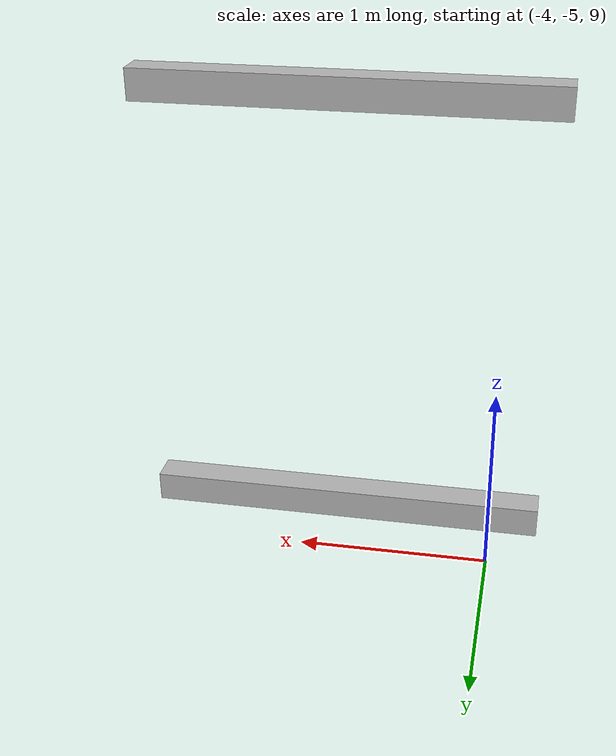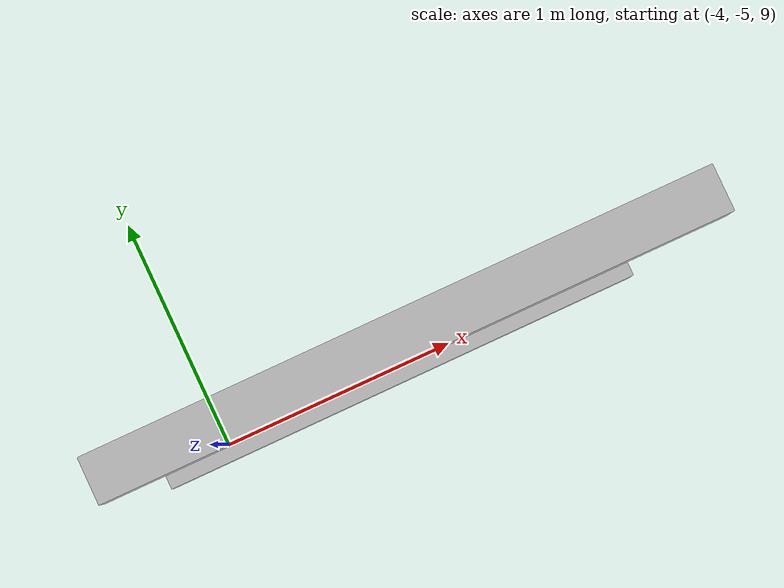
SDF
<sdf version="1.7">
 <world name="default">
  <model name="orthogonal_747_2.000.15_TS">
   <static>1</static>
   <link name="x_link_5_0_1">
    <inertial>
     <mass>1</mass>
     <inertia>
      <ixx>0.166667</ixx>
      <ixy>0</ixy>
      <ixz>0</ixz>
      <iyy>0.166667</iyy>
      <iyz>0</iyz>
      <izz>0.166667</izz>
     </inertia>
    </inertial>
    <pose>3.225 0 11.825 0 -0 0</pose>
    <visual name="visual_0">
     <laser_retro>4390</laser_retro>
     <geometry><box><size>2 1e-06 0.15</size></box></geometry>
     <material>
      <script><name>Gazebo/Grey</name><uri>file://media/materials/scripts/gazebo.material</uri></script>
      <shader type="pixel"><normal_map>__default__</normal_map></shader>
      <ambient>0.678 0.498 0.659 1</ambient>
      <diffuse>0.7 0.7 0.7 1</diffuse>
      <specular>0.01 0.01 0.01 1</specular>
      <emissive>0 0 0 1</emissive>
     </material>
     <pose>0 -0.075 0 0 -0 0</pose>
     <transparency>1</transparency>
    </visual>
    <visual name="visual_1">
     <laser_retro>4391</laser_retro>
     <geometry><box><size>2 1e-06 0.15</size></box></geometry>
     <material>
      <script><name>Gazebo/Grey</name><uri>file://media/materials/scripts/gazebo.material</uri></script>
      <shader type="pixel"><normal_map>__default__</normal_map></shader>
      <ambient>0.447 0.624 0.812 1</ambient>
      <diffuse>0.7 0.7 0.7 1</diffuse>
      <specular>0.01 0.01 0.01 1</specular>
      <emissive>0 0 0 1</emissive>
     </material>
     <pose>0 0.075 0 0 -0 0</pose>
     <transparency>1</transparency>
    </visual>
    <visual name="visual_2">
     <laser_retro>4392</laser_retro>
     <geometry><box><size>2 0.15 1e-06</size></box></geometry>
     <material>
      <script><name>Gazebo/Grey</name><uri>file://media/materials/scripts/gazebo.material</uri></script>
      <shader type="pixel"><normal_map>__default__</normal_map></shader>
      <ambient>0.988 0.686 0.243 1</ambient>
      <diffuse>0.7 0.7 0.7 1</diffuse>
      <specular>0.01 0.01 0.01 1</specular>
      <emissive>0 0 0 1</emissive>
     </material>
     <pose>0 0 -0.075 0 -0 0</pose>
     <transparency>1</transparency>
    </visual>
    <visual name="visual_3">
     <laser_retro>4393</laser_retro>
     <geometry><box><size>1e-06 0.15 0.15</size></box></geometry>
     <material>
      <script><name>Gazebo/Grey</name><uri>file://media/materials/scripts/gazebo.material</uri></script>
      <shader type="pixel"><normal_map>__default__</normal_map></shader>
      <ambient>0.988 0.914 0.31 1</ambient>
      <diffuse>0.7 0.7 0.7 1</diffuse>
      <specular>0.01 0.01 0.01 1</specular>
      <emissive>0 0 0 1</emissive>
     </material>
     <pose>1 0 0 0 -0 0</pose>
     <transparency>1</transparency>
    </visual>
    <visual name="visual_4">
     <laser_retro>4394</laser_retro>
     <geometry><box><size>2 0.15 1e-06</size></box></geometry>
     <material>
      <script><name>Gazebo/Grey</name><uri>file://media/materials/scripts/gazebo.material</uri></script>
      <shader type="pixel"><normal_map>__default__</normal_map></shader>
      <ambient>0.937 0.161 0.161 1</ambient>
      <diffuse>0.7 0.7 0.7 1</diffuse>
      <specular>0.01 0.01 0.01 1</specular>
      <emissive>0 0 0 1</emissive>
     </material>
     <pose>0 0 0.075 0 -0 0</pose>
     <transparency>1</transparency>
    </visual>
    <visual name="visual_5">
     <laser_retro>4395</laser_retro>
     <geometry><box><size>1e-06 0.15 0.15</size></box></geometry>
     <material>
      <script><name>Gazebo/Grey</name><uri>file://media/materials/scripts/gazebo.material</uri></script>
      <shader type="pixel"><normal_map>__default__</normal_map></shader>
      <ambient>0.541 0.886 0.204 1</ambient>
      <diffuse>0.7 0.7 0.7 1</diffuse>
      <specular>0.01 0.01 0.01 1</specular>
      <emissive>0 0 0 1</emissive>
     </material>
     <pose>-1 0 0 0 -0 0</pose>
     <transparency>1</transparency>
    </visual>
    <visual name="visual_texture">
     <geometry><box><size>1.9998 0.149985 0.149985</size></box></geometry>
     <material>
      <script>
       <uri>model://BASE_MODELS/simple_block_v2_textured/materials/scripts</uri>
       <uri>model://BASE_MODELS/simple_block_v2_textured/materials/textures</uri>
       <name>metal</name>
      </script>
     </material>
     <laser_retro>4396</laser_retro>
    </visual>
    <collision name="collision">
     <geometry><box><size>2 0.15 0.15</size></box></geometry>
     <surface>
      <friction>
       <ode><mu>1</mu><mu2>1</mu2><fdir1>0 0 0</fdir1><slip1>0</slip1><slip2>0</slip2></ode>
       <torsional>
        <coefficient>1</coefficient>
        <patch_radius>0</patch_radius>
        <surface_radius>0</surface_radius>
        <use_patch_radius>1</use_patch_radius>
        <ode><slip>0</slip></ode>
       </torsional>
      </friction>
      <bounce><restitution_coefficient>0</restitution_coefficient><threshold>1e+06</threshold></bounce>
      <contact>
       <collide_without_contact>0</collide_without_contact>
       <collide_without_contact_bitmask>1</collide_without_contact_bitmask>
       <collide_bitmask>1</collide_bitmask>
       <ode>
        <soft_cfm>0</soft_cfm>
        <soft_erp>0.2</soft_erp>
        <kp>1e+13</kp>
        <kd>1</kd>
        <max_vel>0.01</max_vel>
        <min_depth>0</min_depth>
       </ode>
       <bullet>
        <split_impulse>1</split_impulse>
        <split_impulse_penetration_threshold>-0.01</split_impulse_penetration_threshold>
        <soft_cfm>0</soft_cfm>
        <soft_erp>0.2</soft_erp>
        <kp>1e+13</kp>
        <kd>1</kd>
       </bullet>
      </contact>
     </surface>
    </collision>
   </link>
   <link name="x_link_6_0_1">
    <inertial>
     <mass>1</mass>
     <inertia>
      <ixx>0.166667</ixx>
      <ixy>0</ixy>
      <ixz>0</ixz>
      <iyy>0.166667</iyy>
      <iyz>0</iyz>
      <izz>0.166667</izz>
     </inertia>
    </inertial>
    <pose>3.225 0 13.975 0 -0 0</pose>
    <visual name="visual_0">
     <laser_retro>5293</laser_retro>
     <geometry><box><size>2 1e-06 0.15</size></box></geometry>
     <material>
      <script><name>Gazebo/Grey</name><uri>file://media/materials/scripts/gazebo.material</uri></script>
      <shader type="pixel"><normal_map>__default__</normal_map></shader>
      <ambient>0.678 0.498 0.659 1</ambient>
      <diffuse>0.7 0.7 0.7 1</diffuse>
      <specular>0.01 0.01 0.01 1</specular>
      <emissive>0 0 0 1</emissive>
     </material>
     <pose>0 -0.075 0 0 -0 0</pose>
     <transparency>1</transparency>
    </visual>
    <visual name="visual_1">
     <laser_retro>5294</laser_retro>
     <geometry><box><size>2 1e-06 0.15</size></box></geometry>
     <material>
      <script><name>Gazebo/Grey</name><uri>file://media/materials/scripts/gazebo.material</uri></script>
      <shader type="pixel"><normal_map>__default__</normal_map></shader>
      <ambient>0.447 0.624 0.812 1</ambient>
      <diffuse>0.7 0.7 0.7 1</diffuse>
      <specular>0.01 0.01 0.01 1</specular>
      <emissive>0 0 0 1</emissive>
     </material>
     <pose>0 0.075 0 0 -0 0</pose>
     <transparency>1</transparency>
    </visual>
    <visual name="visual_2">
     <laser_retro>5295</laser_retro>
     <geometry><box><size>2 0.15 1e-06</size></box></geometry>
     <material>
      <script><name>Gazebo/Grey</name><uri>file://media/materials/scripts/gazebo.material</uri></script>
      <shader type="pixel"><normal_map>__default__</normal_map></shader>
      <ambient>0.988 0.686 0.243 1</ambient>
      <diffuse>0.7 0.7 0.7 1</diffuse>
      <specular>0.01 0.01 0.01 1</specular>
      <emissive>0 0 0 1</emissive>
     </material>
     <pose>0 0 -0.075 0 -0 0</pose>
     <transparency>1</transparency>
    </visual>
    <visual name="visual_3">
     <laser_retro>5296</laser_retro>
     <geometry><box><size>1e-06 0.15 0.15</size></box></geometry>
     <material>
      <script><name>Gazebo/Grey</name><uri>file://media/materials/scripts/gazebo.material</uri></script>
      <shader type="pixel"><normal_map>__default__</normal_map></shader>
      <ambient>0.988 0.914 0.31 1</ambient>
      <diffuse>0.7 0.7 0.7 1</diffuse>
      <specular>0.01 0.01 0.01 1</specular>
      <emissive>0 0 0 1</emissive>
     </material>
     <pose>1 0 0 0 -0 0</pose>
     <transparency>1</transparency>
    </visual>
    <visual name="visual_4">
     <laser_retro>5297</laser_retro>
     <geometry><box><size>2 0.15 1e-06</size></box></geometry>
     <material>
      <script><name>Gazebo/Grey</name><uri>file://media/materials/scripts/gazebo.material</uri></script>
      <shader type="pixel"><normal_map>__default__</normal_map></shader>
      <ambient>0.937 0.161 0.161 1</ambient>
      <diffuse>0.7 0.7 0.7 1</diffuse>
      <specular>0.01 0.01 0.01 1</specular>
      <emissive>0 0 0 1</emissive>
     </material>
     <pose>0 0 0.075 0 -0 0</pose>
     <transparency>1</transparency>
    </visual>
    <visual name="visual_5">
     <laser_retro>5298</laser_retro>
     <geometry><box><size>1e-06 0.15 0.15</size></box></geometry>
     <material>
      <script><name>Gazebo/Grey</name><uri>file://media/materials/scripts/gazebo.material</uri></script>
      <shader type="pixel"><normal_map>__default__</normal_map></shader>
      <ambient>0.541 0.886 0.204 1</ambient>
      <diffuse>0.7 0.7 0.7 1</diffuse>
      <specular>0.01 0.01 0.01 1</specular>
      <emissive>0 0 0 1</emissive>
     </material>
     <pose>-1 0 0 0 -0 0</pose>
     <transparency>1</transparency>
    </visual>
    <visual name="visual_texture">
     <geometry><box><size>1.9998 0.149985 0.149985</size></box></geometry>
     <material>
      <script>
       <uri>model://BASE_MODELS/simple_block_v2_textured/materials/scripts</uri>
       <uri>model://BASE_MODELS/simple_block_v2_textured/materials/textures</uri>
       <name>metal</name>
      </script>
     </material>
     <laser_retro>5299</laser_retro>
    </visual>
    <collision name="collision">
     <geometry><box><size>2 0.15 0.15</size></box></geometry>
     <surface>
      <friction>
       <ode><mu>1</mu><mu2>1</mu2><fdir1>0 0 0</fdir1><slip1>0</slip1><slip2>0</slip2></ode>
       <torsional>
        <coefficient>1</coefficient>
        <patch_radius>0</patch_radius>
        <surface_radius>0</surface_radius>
        <use_patch_radius>1</use_patch_radius>
        <ode><slip>0</slip></ode>
       </torsional>
      </friction>
      <bounce><restitution_coefficient>0</restitution_coefficient><threshold>1e+06</threshold></bounce>
      <contact>
       <collide_without_contact>0</collide_without_contact>
       <collide_without_contact_bitmask>1</collide_without_contact_bitmask>
       <collide_bitmask>1</collide_bitmask>
       <ode>
        <soft_cfm>0</soft_cfm>
        <soft_erp>0.2</soft_erp>
        <kp>1e+13</kp>
        <kd>1</kd>
        <max_vel>0.01</max_vel>
        <min_depth>0</min_depth>
       </ode>
       <bullet>
        <split_impulse>1</split_impulse>
        <split_impulse_penetration_threshold>-0.01</split_impulse_penetration_threshold>
        <soft_cfm>0</soft_cfm>
        <soft_erp>0.2</soft_erp>
        <kp>1e+13</kp>
        <kd>1</kd>
       </bullet>
      </contact>
     </surface>
    </collision>
   </link>
   <pose>-6.47624 -5 -2.5 0 -0 0</pose>
  </model>
 </world>
</sdf>
